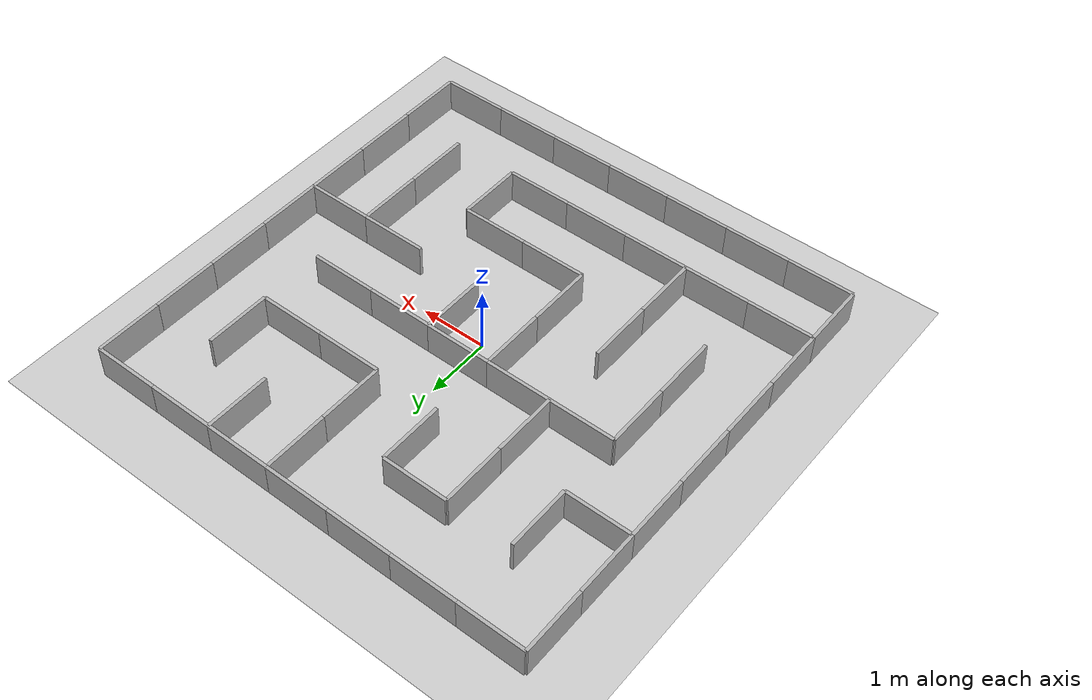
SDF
<?xml version="1.0" ?>
<sdf version="1.6">
  <world name="maze_world">

    <!-- 조명 -->
    <include>
      <uri>model://sun</uri>
    </include>

    <!-- 바닥 -->
    <include>
      <uri>model://ground_plane</uri>
    </include>

    <!-- 미로 벽들 -->
    <model name="maze">
      <static>true</static>
      <pose>0 0 0 0 0 0</pose>

      <link name="wall_0">
        <pose>-3.0 -3.5 0.25 0 0 0</pose>
        <collision name="collision">
          <geometry>
            <box>
              <size>1.0 0.05 0.5</size>
            </box>
          </geometry>
        </collision>
        <visual name="visual">
          <geometry>
            <box>
              <size>1.0 0.05 0.5</size>
            </box>
          </geometry>
          <material>
            <ambient>0.7 0.7 0.7 1</ambient>
            <diffuse>0.7 0.7 0.7 1</diffuse>
            <specular>0.1 0.1 0.1 1</specular>
          </material>
        </visual>
      </link>

      <link name="wall_1">
        <pose>-2.0 -3.5 0.25 0 0 0</pose>
        <collision name="collision">
          <geometry>
            <box>
              <size>1.0 0.05 0.5</size>
            </box>
          </geometry>
        </collision>
        <visual name="visual">
          <geometry>
            <box>
              <size>1.0 0.05 0.5</size>
            </box>
          </geometry>
          <material>
            <ambient>0.7 0.7 0.7 1</ambient>
            <diffuse>0.7 0.7 0.7 1</diffuse>
            <specular>0.1 0.1 0.1 1</specular>
          </material>
        </visual>
      </link>

      <link name="wall_2">
        <pose>-1.0 -3.5 0.25 0 0 0</pose>
        <collision name="collision">
          <geometry>
            <box>
              <size>1.0 0.05 0.5</size>
            </box>
          </geometry>
        </collision>
        <visual name="visual">
          <geometry>
            <box>
              <size>1.0 0.05 0.5</size>
            </box>
          </geometry>
          <material>
            <ambient>0.7 0.7 0.7 1</ambient>
            <diffuse>0.7 0.7 0.7 1</diffuse>
            <specular>0.1 0.1 0.1 1</specular>
          </material>
        </visual>
      </link>

      <link name="wall_3">
        <pose>0.0 -3.5 0.25 0 0 0</pose>
        <collision name="collision">
          <geometry>
            <box>
              <size>1.0 0.05 0.5</size>
            </box>
          </geometry>
        </collision>
        <visual name="visual">
          <geometry>
            <box>
              <size>1.0 0.05 0.5</size>
            </box>
          </geometry>
          <material>
            <ambient>0.7 0.7 0.7 1</ambient>
            <diffuse>0.7 0.7 0.7 1</diffuse>
            <specular>0.1 0.1 0.1 1</specular>
          </material>
        </visual>
      </link>

      <link name="wall_4">
        <pose>1.0 -3.5 0.25 0 0 0</pose>
        <collision name="collision">
          <geometry>
            <box>
              <size>1.0 0.05 0.5</size>
            </box>
          </geometry>
        </collision>
        <visual name="visual">
          <geometry>
            <box>
              <size>1.0 0.05 0.5</size>
            </box>
          </geometry>
          <material>
            <ambient>0.7 0.7 0.7 1</ambient>
            <diffuse>0.7 0.7 0.7 1</diffuse>
            <specular>0.1 0.1 0.1 1</specular>
          </material>
        </visual>
      </link>

      <link name="wall_5">
        <pose>2.0 -3.5 0.25 0 0 0</pose>
        <collision name="collision">
          <geometry>
            <box>
              <size>1.0 0.05 0.5</size>
            </box>
          </geometry>
        </collision>
        <visual name="visual">
          <geometry>
            <box>
              <size>1.0 0.05 0.5</size>
            </box>
          </geometry>
          <material>
            <ambient>0.7 0.7 0.7 1</ambient>
            <diffuse>0.7 0.7 0.7 1</diffuse>
            <specular>0.1 0.1 0.1 1</specular>
          </material>
        </visual>
      </link>

      <link name="wall_6">
        <pose>3.0 -3.5 0.25 0 0 0</pose>
        <collision name="collision">
          <geometry>
            <box>
              <size>1.0 0.05 0.5</size>
            </box>
          </geometry>
        </collision>
        <visual name="visual">
          <geometry>
            <box>
              <size>1.0 0.05 0.5</size>
            </box>
          </geometry>
          <material>
            <ambient>0.7 0.7 0.7 1</ambient>
            <diffuse>0.7 0.7 0.7 1</diffuse>
            <specular>0.1 0.1 0.1 1</specular>
          </material>
        </visual>
      </link>

      <link name="wall_7">
        <pose>-3.0 -2.5 0.25 0 0 0</pose>
        <collision name="collision">
          <geometry>
            <box>
              <size>1.0 0.05 0.5</size>
            </box>
          </geometry>
        </collision>
        <visual name="visual">
          <geometry>
            <box>
              <size>1.0 0.05 0.5</size>
            </box>
          </geometry>
          <material>
            <ambient>0.7 0.7 0.7 1</ambient>
            <diffuse>0.7 0.7 0.7 1</diffuse>
            <specular>0.1 0.1 0.1 1</specular>
          </material>
        </visual>
      </link>

      <link name="wall_8">
        <pose>-2.0 -2.5 0.25 0 0 0</pose>
        <collision name="collision">
          <geometry>
            <box>
              <size>1.0 0.05 0.5</size>
            </box>
          </geometry>
        </collision>
        <visual name="visual">
          <geometry>
            <box>
              <size>1.0 0.05 0.5</size>
            </box>
          </geometry>
          <material>
            <ambient>0.7 0.7 0.7 1</ambient>
            <diffuse>0.7 0.7 0.7 1</diffuse>
            <specular>0.1 0.1 0.1 1</specular>
          </material>
        </visual>
      </link>

      <link name="wall_9">
        <pose>-1.0 -2.5 0.25 0 0 0</pose>
        <collision name="collision">
          <geometry>
            <box>
              <size>1.0 0.05 0.5</size>
            </box>
          </geometry>
        </collision>
        <visual name="visual">
          <geometry>
            <box>
              <size>1.0 0.05 0.5</size>
            </box>
          </geometry>
          <material>
            <ambient>0.7 0.7 0.7 1</ambient>
            <diffuse>0.7 0.7 0.7 1</diffuse>
            <specular>0.1 0.1 0.1 1</specular>
          </material>
        </visual>
      </link>

      <link name="wall_10">
        <pose>0.0 -2.5 0.25 0 0 0</pose>
        <collision name="collision">
          <geometry>
            <box>
              <size>1.0 0.05 0.5</size>
            </box>
          </geometry>
        </collision>
        <visual name="visual">
          <geometry>
            <box>
              <size>1.0 0.05 0.5</size>
            </box>
          </geometry>
          <material>
            <ambient>0.7 0.7 0.7 1</ambient>
            <diffuse>0.7 0.7 0.7 1</diffuse>
            <specular>0.1 0.1 0.1 1</specular>
          </material>
        </visual>
      </link>

      <link name="wall_11">
        <pose>1.0 -2.5 0.25 0 0 0</pose>
        <collision name="collision">
          <geometry>
            <box>
              <size>1.0 0.05 0.5</size>
            </box>
          </geometry>
        </collision>
        <visual name="visual">
          <geometry>
            <box>
              <size>1.0 0.05 0.5</size>
            </box>
          </geometry>
          <material>
            <ambient>0.7 0.7 0.7 1</ambient>
            <diffuse>0.7 0.7 0.7 1</diffuse>
            <specular>0.1 0.1 0.1 1</specular>
          </material>
        </visual>
      </link>

      <link name="wall_12">
        <pose>0.0 -1.5 0.25 0 0 0</pose>
        <collision name="collision">
          <geometry>
            <box>
              <size>1.0 0.05 0.5</size>
            </box>
          </geometry>
        </collision>
        <visual name="visual">
          <geometry>
            <box>
              <size>1.0 0.05 0.5</size>
            </box>
          </geometry>
          <material>
            <ambient>0.7 0.7 0.7 1</ambient>
            <diffuse>0.7 0.7 0.7 1</diffuse>
            <specular>0.1 0.1 0.1 1</specular>
          </material>
        </visual>
      </link>

      <link name="wall_13">
        <pose>1.0 -1.5 0.25 0 0 0</pose>
        <collision name="collision">
          <geometry>
            <box>
              <size>1.0 0.05 0.5</size>
            </box>
          </geometry>
        </collision>
        <visual name="visual">
          <geometry>
            <box>
              <size>1.0 0.05 0.5</size>
            </box>
          </geometry>
          <material>
            <ambient>0.7 0.7 0.7 1</ambient>
            <diffuse>0.7 0.7 0.7 1</diffuse>
            <specular>0.1 0.1 0.1 1</specular>
          </material>
        </visual>
      </link>

      <link name="wall_14">
        <pose>2.0 -0.5 0.25 0 0 0</pose>
        <collision name="collision">
          <geometry>
            <box>
              <size>1.0 0.05 0.5</size>
            </box>
          </geometry>
        </collision>
        <visual name="visual">
          <geometry>
            <box>
              <size>1.0 0.05 0.5</size>
            </box>
          </geometry>
          <material>
            <ambient>0.7 0.7 0.7 1</ambient>
            <diffuse>0.7 0.7 0.7 1</diffuse>
            <specular>0.1 0.1 0.1 1</specular>
          </material>
        </visual>
      </link>

      <link name="wall_15">
        <pose>3.0 -0.5 0.25 0 0 0</pose>
        <collision name="collision">
          <geometry>
            <box>
              <size>1.0 0.05 0.5</size>
            </box>
          </geometry>
        </collision>
        <visual name="visual">
          <geometry>
            <box>
              <size>1.0 0.05 0.5</size>
            </box>
          </geometry>
          <material>
            <ambient>0.7 0.7 0.7 1</ambient>
            <diffuse>0.7 0.7 0.7 1</diffuse>
            <specular>0.1 0.1 0.1 1</specular>
          </material>
        </visual>
      </link>

      <link name="wall_16">
        <pose>-2.0 0.5 0.25 0 0 0</pose>
        <collision name="collision">
          <geometry>
            <box>
              <size>1.0 0.05 0.5</size>
            </box>
          </geometry>
        </collision>
        <visual name="visual">
          <geometry>
            <box>
              <size>1.0 0.05 0.5</size>
            </box>
          </geometry>
          <material>
            <ambient>0.7 0.7 0.7 1</ambient>
            <diffuse>0.7 0.7 0.7 1</diffuse>
            <specular>0.1 0.1 0.1 1</specular>
          </material>
        </visual>
      </link>

      <link name="wall_17">
        <pose>-1.0 0.5 0.25 0 0 0</pose>
        <collision name="collision">
          <geometry>
            <box>
              <size>1.0 0.05 0.5</size>
            </box>
          </geometry>
        </collision>
        <visual name="visual">
          <geometry>
            <box>
              <size>1.0 0.05 0.5</size>
            </box>
          </geometry>
          <material>
            <ambient>0.7 0.7 0.7 1</ambient>
            <diffuse>0.7 0.7 0.7 1</diffuse>
            <specular>0.1 0.1 0.1 1</specular>
          </material>
        </visual>
      </link>

      <link name="wall_18">
        <pose>0.0 0.5 0.25 0 0 0</pose>
        <collision name="collision">
          <geometry>
            <box>
              <size>1.0 0.05 0.5</size>
            </box>
          </geometry>
        </collision>
        <visual name="visual">
          <geometry>
            <box>
              <size>1.0 0.05 0.5</size>
            </box>
          </geometry>
          <material>
            <ambient>0.7 0.7 0.7 1</ambient>
            <diffuse>0.7 0.7 0.7 1</diffuse>
            <specular>0.1 0.1 0.1 1</specular>
          </material>
        </visual>
      </link>

      <link name="wall_19">
        <pose>1.0 0.5 0.25 0 0 0</pose>
        <collision name="collision">
          <geometry>
            <box>
              <size>1.0 0.05 0.5</size>
            </box>
          </geometry>
        </collision>
        <visual name="visual">
          <geometry>
            <box>
              <size>1.0 0.05 0.5</size>
            </box>
          </geometry>
          <material>
            <ambient>0.7 0.7 0.7 1</ambient>
            <diffuse>0.7 0.7 0.7 1</diffuse>
            <specular>0.1 0.1 0.1 1</specular>
          </material>
        </visual>
      </link>

      <link name="wall_20">
        <pose>2.0 0.5 0.25 0 0 0</pose>
        <collision name="collision">
          <geometry>
            <box>
              <size>1.0 0.05 0.5</size>
            </box>
          </geometry>
        </collision>
        <visual name="visual">
          <geometry>
            <box>
              <size>1.0 0.05 0.5</size>
            </box>
          </geometry>
          <material>
            <ambient>0.7 0.7 0.7 1</ambient>
            <diffuse>0.7 0.7 0.7 1</diffuse>
            <specular>0.1 0.1 0.1 1</specular>
          </material>
        </visual>
      </link>

      <link name="wall_21">
        <pose>-3.0 1.5 0.25 0 0 0</pose>
        <collision name="collision">
          <geometry>
            <box>
              <size>1.0 0.05 0.5</size>
            </box>
          </geometry>
        </collision>
        <visual name="visual">
          <geometry>
            <box>
              <size>1.0 0.05 0.5</size>
            </box>
          </geometry>
          <material>
            <ambient>0.7 0.7 0.7 1</ambient>
            <diffuse>0.7 0.7 0.7 1</diffuse>
            <specular>0.1 0.1 0.1 1</specular>
          </material>
        </visual>
      </link>

      <link name="wall_22">
        <pose>1.0 1.5 0.25 0 0 0</pose>
        <collision name="collision">
          <geometry>
            <box>
              <size>1.0 0.05 0.5</size>
            </box>
          </geometry>
        </collision>
        <visual name="visual">
          <geometry>
            <box>
              <size>1.0 0.05 0.5</size>
            </box>
          </geometry>
          <material>
            <ambient>0.7 0.7 0.7 1</ambient>
            <diffuse>0.7 0.7 0.7 1</diffuse>
            <specular>0.1 0.1 0.1 1</specular>
          </material>
        </visual>
      </link>

      <link name="wall_23">
        <pose>2.0 1.5 0.25 0 0 0</pose>
        <collision name="collision">
          <geometry>
            <box>
              <size>1.0 0.05 0.5</size>
            </box>
          </geometry>
        </collision>
        <visual name="visual">
          <geometry>
            <box>
              <size>1.0 0.05 0.5</size>
            </box>
          </geometry>
          <material>
            <ambient>0.7 0.7 0.7 1</ambient>
            <diffuse>0.7 0.7 0.7 1</diffuse>
            <specular>0.1 0.1 0.1 1</specular>
          </material>
        </visual>
      </link>

      <link name="wall_24">
        <pose>-1.0 2.5 0.25 0 0 0</pose>
        <collision name="collision">
          <geometry>
            <box>
              <size>1.0 0.05 0.5</size>
            </box>
          </geometry>
        </collision>
        <visual name="visual">
          <geometry>
            <box>
              <size>1.0 0.05 0.5</size>
            </box>
          </geometry>
          <material>
            <ambient>0.7 0.7 0.7 1</ambient>
            <diffuse>0.7 0.7 0.7 1</diffuse>
            <specular>0.1 0.1 0.1 1</specular>
          </material>
        </visual>
      </link>

      <link name="wall_25">
        <pose>-3.0 3.5 0.25 0 0 0</pose>
        <collision name="collision">
          <geometry>
            <box>
              <size>1.0 0.05 0.5</size>
            </box>
          </geometry>
        </collision>
        <visual name="visual">
          <geometry>
            <box>
              <size>1.0 0.05 0.5</size>
            </box>
          </geometry>
          <material>
            <ambient>0.7 0.7 0.7 1</ambient>
            <diffuse>0.7 0.7 0.7 1</diffuse>
            <specular>0.1 0.1 0.1 1</specular>
          </material>
        </visual>
      </link>

      <link name="wall_26">
        <pose>-2.0 3.5 0.25 0 0 0</pose>
        <collision name="collision">
          <geometry>
            <box>
              <size>1.0 0.05 0.5</size>
            </box>
          </geometry>
        </collision>
        <visual name="visual">
          <geometry>
            <box>
              <size>1.0 0.05 0.5</size>
            </box>
          </geometry>
          <material>
            <ambient>0.7 0.7 0.7 1</ambient>
            <diffuse>0.7 0.7 0.7 1</diffuse>
            <specular>0.1 0.1 0.1 1</specular>
          </material>
        </visual>
      </link>

      <link name="wall_27">
        <pose>-1.0 3.5 0.25 0 0 0</pose>
        <collision name="collision">
          <geometry>
            <box>
              <size>1.0 0.05 0.5</size>
            </box>
          </geometry>
        </collision>
        <visual name="visual">
          <geometry>
            <box>
              <size>1.0 0.05 0.5</size>
            </box>
          </geometry>
          <material>
            <ambient>0.7 0.7 0.7 1</ambient>
            <diffuse>0.7 0.7 0.7 1</diffuse>
            <specular>0.1 0.1 0.1 1</specular>
          </material>
        </visual>
      </link>

      <link name="wall_28">
        <pose>0.0 3.5 0.25 0 0 0</pose>
        <collision name="collision">
          <geometry>
            <box>
              <size>1.0 0.05 0.5</size>
            </box>
          </geometry>
        </collision>
        <visual name="visual">
          <geometry>
            <box>
              <size>1.0 0.05 0.5</size>
            </box>
          </geometry>
          <material>
            <ambient>0.7 0.7 0.7 1</ambient>
            <diffuse>0.7 0.7 0.7 1</diffuse>
            <specular>0.1 0.1 0.1 1</specular>
          </material>
        </visual>
      </link>

      <link name="wall_29">
        <pose>1.0 3.5 0.25 0 0 0</pose>
        <collision name="collision">
          <geometry>
            <box>
              <size>1.0 0.05 0.5</size>
            </box>
          </geometry>
        </collision>
        <visual name="visual">
          <geometry>
            <box>
              <size>1.0 0.05 0.5</size>
            </box>
          </geometry>
          <material>
            <ambient>0.7 0.7 0.7 1</ambient>
            <diffuse>0.7 0.7 0.7 1</diffuse>
            <specular>0.1 0.1 0.1 1</specular>
          </material>
        </visual>
      </link>

      <link name="wall_30">
        <pose>2.0 3.5 0.25 0 0 0</pose>
        <collision name="collision">
          <geometry>
            <box>
              <size>1.0 0.05 0.5</size>
            </box>
          </geometry>
        </collision>
        <visual name="visual">
          <geometry>
            <box>
              <size>1.0 0.05 0.5</size>
            </box>
          </geometry>
          <material>
            <ambient>0.7 0.7 0.7 1</ambient>
            <diffuse>0.7 0.7 0.7 1</diffuse>
            <specular>0.1 0.1 0.1 1</specular>
          </material>
        </visual>
      </link>

      <link name="wall_31">
        <pose>3.0 3.5 0.25 0 0 0</pose>
        <collision name="collision">
          <geometry>
            <box>
              <size>1.0 0.05 0.5</size>
            </box>
          </geometry>
        </collision>
        <visual name="visual">
          <geometry>
            <box>
              <size>1.0 0.05 0.5</size>
            </box>
          </geometry>
          <material>
            <ambient>0.7 0.7 0.7 1</ambient>
            <diffuse>0.7 0.7 0.7 1</diffuse>
            <specular>0.1 0.1 0.1 1</specular>
          </material>
        </visual>
      </link>

      <link name="wall_32">
        <pose>-3.5 -3.0 0.25 0 0 0</pose>
        <collision name="collision">
          <geometry>
            <box>
              <size>0.05 1.0 0.5</size>
            </box>
          </geometry>
        </collision>
        <visual name="visual">
          <geometry>
            <box>
              <size>0.05 1.0 0.5</size>
            </box>
          </geometry>
          <material>
            <ambient>0.7 0.7 0.7 1</ambient>
            <diffuse>0.7 0.7 0.7 1</diffuse>
            <specular>0.1 0.1 0.1 1</specular>
          </material>
        </visual>
      </link>

      <link name="wall_33">
        <pose>3.5 -3.0 0.25 0 0 0</pose>
        <collision name="collision">
          <geometry>
            <box>
              <size>0.05 1.0 0.5</size>
            </box>
          </geometry>
        </collision>
        <visual name="visual">
          <geometry>
            <box>
              <size>0.05 1.0 0.5</size>
            </box>
          </geometry>
          <material>
            <ambient>0.7 0.7 0.7 1</ambient>
            <diffuse>0.7 0.7 0.7 1</diffuse>
            <specular>0.1 0.1 0.1 1</specular>
          </material>
        </visual>
      </link>

      <link name="wall_34">
        <pose>-3.5 -2.0 0.25 0 0 0</pose>
        <collision name="collision">
          <geometry>
            <box>
              <size>0.05 1.0 0.5</size>
            </box>
          </geometry>
        </collision>
        <visual name="visual">
          <geometry>
            <box>
              <size>0.05 1.0 0.5</size>
            </box>
          </geometry>
          <material>
            <ambient>0.7 0.7 0.7 1</ambient>
            <diffuse>0.7 0.7 0.7 1</diffuse>
            <specular>0.1 0.1 0.1 1</specular>
          </material>
        </visual>
      </link>

      <link name="wall_35">
        <pose>-1.5 -2.0 0.25 0 0 0</pose>
        <collision name="collision">
          <geometry>
            <box>
              <size>0.05 1.0 0.5</size>
            </box>
          </geometry>
        </collision>
        <visual name="visual">
          <geometry>
            <box>
              <size>0.05 1.0 0.5</size>
            </box>
          </geometry>
          <material>
            <ambient>0.7 0.7 0.7 1</ambient>
            <diffuse>0.7 0.7 0.7 1</diffuse>
            <specular>0.1 0.1 0.1 1</specular>
          </material>
        </visual>
      </link>

      <link name="wall_36">
        <pose>1.5 -2.0 0.25 0 0 0</pose>
        <collision name="collision">
          <geometry>
            <box>
              <size>0.05 1.0 0.5</size>
            </box>
          </geometry>
        </collision>
        <visual name="visual">
          <geometry>
            <box>
              <size>0.05 1.0 0.5</size>
            </box>
          </geometry>
          <material>
            <ambient>0.7 0.7 0.7 1</ambient>
            <diffuse>0.7 0.7 0.7 1</diffuse>
            <specular>0.1 0.1 0.1 1</specular>
          </material>
        </visual>
      </link>

      <link name="wall_37">
        <pose>2.5 -2.0 0.25 0 0 0</pose>
        <collision name="collision">
          <geometry>
            <box>
              <size>0.05 1.0 0.5</size>
            </box>
          </geometry>
        </collision>
        <visual name="visual">
          <geometry>
            <box>
              <size>0.05 1.0 0.5</size>
            </box>
          </geometry>
          <material>
            <ambient>0.7 0.7 0.7 1</ambient>
            <diffuse>0.7 0.7 0.7 1</diffuse>
            <specular>0.1 0.1 0.1 1</specular>
          </material>
        </visual>
      </link>

      <link name="wall_38">
        <pose>3.5 -2.0 0.25 0 0 0</pose>
        <collision name="collision">
          <geometry>
            <box>
              <size>0.05 1.0 0.5</size>
            </box>
          </geometry>
        </collision>
        <visual name="visual">
          <geometry>
            <box>
              <size>0.05 1.0 0.5</size>
            </box>
          </geometry>
          <material>
            <ambient>0.7 0.7 0.7 1</ambient>
            <diffuse>0.7 0.7 0.7 1</diffuse>
            <specular>0.1 0.1 0.1 1</specular>
          </material>
        </visual>
      </link>

      <link name="wall_39">
        <pose>-3.5 -1.0 0.25 0 0 0</pose>
        <collision name="collision">
          <geometry>
            <box>
              <size>0.05 1.0 0.5</size>
            </box>
          </geometry>
        </collision>
        <visual name="visual">
          <geometry>
            <box>
              <size>0.05 1.0 0.5</size>
            </box>
          </geometry>
          <material>
            <ambient>0.7 0.7 0.7 1</ambient>
            <diffuse>0.7 0.7 0.7 1</diffuse>
            <specular>0.1 0.1 0.1 1</specular>
          </material>
        </visual>
      </link>

      <link name="wall_40">
        <pose>-2.5 -1.0 0.25 0 0 0</pose>
        <collision name="collision">
          <geometry>
            <box>
              <size>0.05 1.0 0.5</size>
            </box>
          </geometry>
        </collision>
        <visual name="visual">
          <geometry>
            <box>
              <size>0.05 1.0 0.5</size>
            </box>
          </geometry>
          <material>
            <ambient>0.7 0.7 0.7 1</ambient>
            <diffuse>0.7 0.7 0.7 1</diffuse>
            <specular>0.1 0.1 0.1 1</specular>
          </material>
        </visual>
      </link>

      <link name="wall_41">
        <pose>-1.5 -1.0 0.25 0 0 0</pose>
        <collision name="collision">
          <geometry>
            <box>
              <size>0.05 1.0 0.5</size>
            </box>
          </geometry>
        </collision>
        <visual name="visual">
          <geometry>
            <box>
              <size>0.05 1.0 0.5</size>
            </box>
          </geometry>
          <material>
            <ambient>0.7 0.7 0.7 1</ambient>
            <diffuse>0.7 0.7 0.7 1</diffuse>
            <specular>0.1 0.1 0.1 1</specular>
          </material>
        </visual>
      </link>

      <link name="wall_42">
        <pose>-0.5 -1.0 0.25 0 0 0</pose>
        <collision name="collision">
          <geometry>
            <box>
              <size>0.05 1.0 0.5</size>
            </box>
          </geometry>
        </collision>
        <visual name="visual">
          <geometry>
            <box>
              <size>0.05 1.0 0.5</size>
            </box>
          </geometry>
          <material>
            <ambient>0.7 0.7 0.7 1</ambient>
            <diffuse>0.7 0.7 0.7 1</diffuse>
            <specular>0.1 0.1 0.1 1</specular>
          </material>
        </visual>
      </link>

      <link name="wall_43">
        <pose>2.5 -1.0 0.25 0 0 0</pose>
        <collision name="collision">
          <geometry>
            <box>
              <size>0.05 1.0 0.5</size>
            </box>
          </geometry>
        </collision>
        <visual name="visual">
          <geometry>
            <box>
              <size>0.05 1.0 0.5</size>
            </box>
          </geometry>
          <material>
            <ambient>0.7 0.7 0.7 1</ambient>
            <diffuse>0.7 0.7 0.7 1</diffuse>
            <specular>0.1 0.1 0.1 1</specular>
          </material>
        </visual>
      </link>

      <link name="wall_44">
        <pose>3.5 -1.0 0.25 0 0 0</pose>
        <collision name="collision">
          <geometry>
            <box>
              <size>0.05 1.0 0.5</size>
            </box>
          </geometry>
        </collision>
        <visual name="visual">
          <geometry>
            <box>
              <size>0.05 1.0 0.5</size>
            </box>
          </geometry>
          <material>
            <ambient>0.7 0.7 0.7 1</ambient>
            <diffuse>0.7 0.7 0.7 1</diffuse>
            <specular>0.1 0.1 0.1 1</specular>
          </material>
        </visual>
      </link>

      <link name="wall_45">
        <pose>-3.5 0.0 0.25 0 0 0</pose>
        <collision name="collision">
          <geometry>
            <box>
              <size>0.05 1.0 0.5</size>
            </box>
          </geometry>
        </collision>
        <visual name="visual">
          <geometry>
            <box>
              <size>0.05 1.0 0.5</size>
            </box>
          </geometry>
          <material>
            <ambient>0.7 0.7 0.7 1</ambient>
            <diffuse>0.7 0.7 0.7 1</diffuse>
            <specular>0.1 0.1 0.1 1</specular>
          </material>
        </visual>
      </link>

      <link name="wall_46">
        <pose>-2.5 0.0 0.25 0 0 0</pose>
        <collision name="collision">
          <geometry>
            <box>
              <size>0.05 1.0 0.5</size>
            </box>
          </geometry>
        </collision>
        <visual name="visual">
          <geometry>
            <box>
              <size>0.05 1.0 0.5</size>
            </box>
          </geometry>
          <material>
            <ambient>0.7 0.7 0.7 1</ambient>
            <diffuse>0.7 0.7 0.7 1</diffuse>
            <specular>0.1 0.1 0.1 1</specular>
          </material>
        </visual>
      </link>

      <link name="wall_47">
        <pose>-0.5 0.0 0.25 0 0 0</pose>
        <collision name="collision">
          <geometry>
            <box>
              <size>0.05 1.0 0.5</size>
            </box>
          </geometry>
        </collision>
        <visual name="visual">
          <geometry>
            <box>
              <size>0.05 1.0 0.5</size>
            </box>
          </geometry>
          <material>
            <ambient>0.7 0.7 0.7 1</ambient>
            <diffuse>0.7 0.7 0.7 1</diffuse>
            <specular>0.1 0.1 0.1 1</specular>
          </material>
        </visual>
      </link>

      <link name="wall_48">
        <pose>0.5 0.0 0.25 0 0 0</pose>
        <collision name="collision">
          <geometry>
            <box>
              <size>0.05 1.0 0.5</size>
            </box>
          </geometry>
        </collision>
        <visual name="visual">
          <geometry>
            <box>
              <size>0.05 1.0 0.5</size>
            </box>
          </geometry>
          <material>
            <ambient>0.7 0.7 0.7 1</ambient>
            <diffuse>0.7 0.7 0.7 1</diffuse>
            <specular>0.1 0.1 0.1 1</specular>
          </material>
        </visual>
      </link>

      <link name="wall_49">
        <pose>3.5 0.0 0.25 0 0 0</pose>
        <collision name="collision">
          <geometry>
            <box>
              <size>0.05 1.0 0.5</size>
            </box>
          </geometry>
        </collision>
        <visual name="visual">
          <geometry>
            <box>
              <size>0.05 1.0 0.5</size>
            </box>
          </geometry>
          <material>
            <ambient>0.7 0.7 0.7 1</ambient>
            <diffuse>0.7 0.7 0.7 1</diffuse>
            <specular>0.1 0.1 0.1 1</specular>
          </material>
        </visual>
      </link>

      <link name="wall_50">
        <pose>-3.5 1.0 0.25 0 0 0</pose>
        <collision name="collision">
          <geometry>
            <box>
              <size>0.05 1.0 0.5</size>
            </box>
          </geometry>
        </collision>
        <visual name="visual">
          <geometry>
            <box>
              <size>0.05 1.0 0.5</size>
            </box>
          </geometry>
          <material>
            <ambient>0.7 0.7 0.7 1</ambient>
            <diffuse>0.7 0.7 0.7 1</diffuse>
            <specular>0.1 0.1 0.1 1</specular>
          </material>
        </visual>
      </link>

      <link name="wall_51">
        <pose>-1.5 1.0 0.25 0 0 0</pose>
        <collision name="collision">
          <geometry>
            <box>
              <size>0.05 1.0 0.5</size>
            </box>
          </geometry>
        </collision>
        <visual name="visual">
          <geometry>
            <box>
              <size>0.05 1.0 0.5</size>
            </box>
          </geometry>
          <material>
            <ambient>0.7 0.7 0.7 1</ambient>
            <diffuse>0.7 0.7 0.7 1</diffuse>
            <specular>0.1 0.1 0.1 1</specular>
          </material>
        </visual>
      </link>

      <link name="wall_52">
        <pose>3.5 1.0 0.25 0 0 0</pose>
        <collision name="collision">
          <geometry>
            <box>
              <size>0.05 1.0 0.5</size>
            </box>
          </geometry>
        </collision>
        <visual name="visual">
          <geometry>
            <box>
              <size>0.05 1.0 0.5</size>
            </box>
          </geometry>
          <material>
            <ambient>0.7 0.7 0.7 1</ambient>
            <diffuse>0.7 0.7 0.7 1</diffuse>
            <specular>0.1 0.1 0.1 1</specular>
          </material>
        </visual>
      </link>

      <link name="wall_53">
        <pose>-3.5 2.0 0.25 0 0 0</pose>
        <collision name="collision">
          <geometry>
            <box>
              <size>0.05 1.0 0.5</size>
            </box>
          </geometry>
        </collision>
        <visual name="visual">
          <geometry>
            <box>
              <size>0.05 1.0 0.5</size>
            </box>
          </geometry>
          <material>
            <ambient>0.7 0.7 0.7 1</ambient>
            <diffuse>0.7 0.7 0.7 1</diffuse>
            <specular>0.1 0.1 0.1 1</specular>
          </material>
        </visual>
      </link>

      <link name="wall_54">
        <pose>-2.5 2.0 0.25 0 0 0</pose>
        <collision name="collision">
          <geometry>
            <box>
              <size>0.05 1.0 0.5</size>
            </box>
          </geometry>
        </collision>
        <visual name="visual">
          <geometry>
            <box>
              <size>0.05 1.0 0.5</size>
            </box>
          </geometry>
          <material>
            <ambient>0.7 0.7 0.7 1</ambient>
            <diffuse>0.7 0.7 0.7 1</diffuse>
            <specular>0.1 0.1 0.1 1</specular>
          </material>
        </visual>
      </link>

      <link name="wall_55">
        <pose>-1.5 2.0 0.25 0 0 0</pose>
        <collision name="collision">
          <geometry>
            <box>
              <size>0.05 1.0 0.5</size>
            </box>
          </geometry>
        </collision>
        <visual name="visual">
          <geometry>
            <box>
              <size>0.05 1.0 0.5</size>
            </box>
          </geometry>
          <material>
            <ambient>0.7 0.7 0.7 1</ambient>
            <diffuse>0.7 0.7 0.7 1</diffuse>
            <specular>0.1 0.1 0.1 1</specular>
          </material>
        </visual>
      </link>

      <link name="wall_56">
        <pose>-0.5 2.0 0.25 0 0 0</pose>
        <collision name="collision">
          <geometry>
            <box>
              <size>0.05 1.0 0.5</size>
            </box>
          </geometry>
        </collision>
        <visual name="visual">
          <geometry>
            <box>
              <size>0.05 1.0 0.5</size>
            </box>
          </geometry>
          <material>
            <ambient>0.7 0.7 0.7 1</ambient>
            <diffuse>0.7 0.7 0.7 1</diffuse>
            <specular>0.1 0.1 0.1 1</specular>
          </material>
        </visual>
      </link>

      <link name="wall_57">
        <pose>0.5 2.0 0.25 0 0 0</pose>
        <collision name="collision">
          <geometry>
            <box>
              <size>0.05 1.0 0.5</size>
            </box>
          </geometry>
        </collision>
        <visual name="visual">
          <geometry>
            <box>
              <size>0.05 1.0 0.5</size>
            </box>
          </geometry>
          <material>
            <ambient>0.7 0.7 0.7 1</ambient>
            <diffuse>0.7 0.7 0.7 1</diffuse>
            <specular>0.1 0.1 0.1 1</specular>
          </material>
        </visual>
      </link>

      <link name="wall_58">
        <pose>2.5 2.0 0.25 0 0 0</pose>
        <collision name="collision">
          <geometry>
            <box>
              <size>0.05 1.0 0.5</size>
            </box>
          </geometry>
        </collision>
        <visual name="visual">
          <geometry>
            <box>
              <size>0.05 1.0 0.5</size>
            </box>
          </geometry>
          <material>
            <ambient>0.7 0.7 0.7 1</ambient>
            <diffuse>0.7 0.7 0.7 1</diffuse>
            <specular>0.1 0.1 0.1 1</specular>
          </material>
        </visual>
      </link>

      <link name="wall_59">
        <pose>3.5 2.0 0.25 0 0 0</pose>
        <collision name="collision">
          <geometry>
            <box>
              <size>0.05 1.0 0.5</size>
            </box>
          </geometry>
        </collision>
        <visual name="visual">
          <geometry>
            <box>
              <size>0.05 1.0 0.5</size>
            </box>
          </geometry>
          <material>
            <ambient>0.7 0.7 0.7 1</ambient>
            <diffuse>0.7 0.7 0.7 1</diffuse>
            <specular>0.1 0.1 0.1 1</specular>
          </material>
        </visual>
      </link>

      <link name="wall_60">
        <pose>-3.5 3.0 0.25 0 0 0</pose>
        <collision name="collision">
          <geometry>
            <box>
              <size>0.05 1.0 0.5</size>
            </box>
          </geometry>
        </collision>
        <visual name="visual">
          <geometry>
            <box>
              <size>0.05 1.0 0.5</size>
            </box>
          </geometry>
          <material>
            <ambient>0.7 0.7 0.7 1</ambient>
            <diffuse>0.7 0.7 0.7 1</diffuse>
            <specular>0.1 0.1 0.1 1</specular>
          </material>
        </visual>
      </link>

      <link name="wall_61">
        <pose>0.5 3.0 0.25 0 0 0</pose>
        <collision name="collision">
          <geometry>
            <box>
              <size>0.05 1.0 0.5</size>
            </box>
          </geometry>
        </collision>
        <visual name="visual">
          <geometry>
            <box>
              <size>0.05 1.0 0.5</size>
            </box>
          </geometry>
          <material>
            <ambient>0.7 0.7 0.7 1</ambient>
            <diffuse>0.7 0.7 0.7 1</diffuse>
            <specular>0.1 0.1 0.1 1</specular>
          </material>
        </visual>
      </link>

      <link name="wall_62">
        <pose>1.5 3.0 0.25 0 0 0</pose>
        <collision name="collision">
          <geometry>
            <box>
              <size>0.05 1.0 0.5</size>
            </box>
          </geometry>
        </collision>
        <visual name="visual">
          <geometry>
            <box>
              <size>0.05 1.0 0.5</size>
            </box>
          </geometry>
          <material>
            <ambient>0.7 0.7 0.7 1</ambient>
            <diffuse>0.7 0.7 0.7 1</diffuse>
            <specular>0.1 0.1 0.1 1</specular>
          </material>
        </visual>
      </link>

      <link name="wall_63">
        <pose>3.5 3.0 0.25 0 0 0</pose>
        <collision name="collision">
          <geometry>
            <box>
              <size>0.05 1.0 0.5</size>
            </box>
          </geometry>
        </collision>
        <visual name="visual">
          <geometry>
            <box>
              <size>0.05 1.0 0.5</size>
            </box>
          </geometry>
          <material>
            <ambient>0.7 0.7 0.7 1</ambient>
            <diffuse>0.7 0.7 0.7 1</diffuse>
            <specular>0.1 0.1 0.1 1</specular>
          </material>
        </visual>
      </link>
    </model>
  </world>
</sdf>
